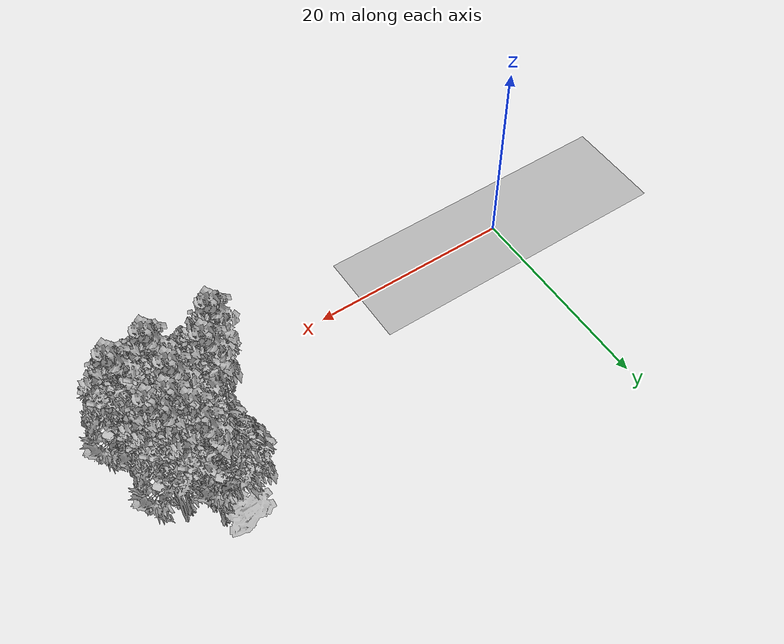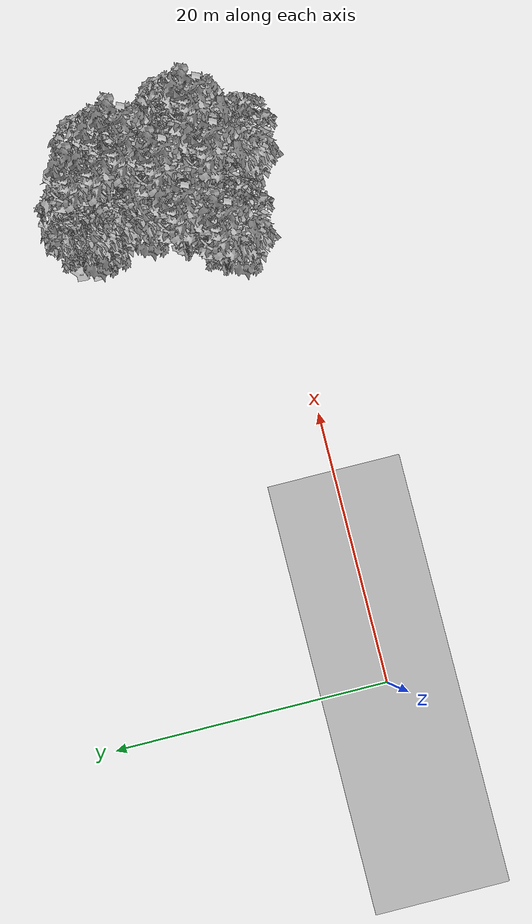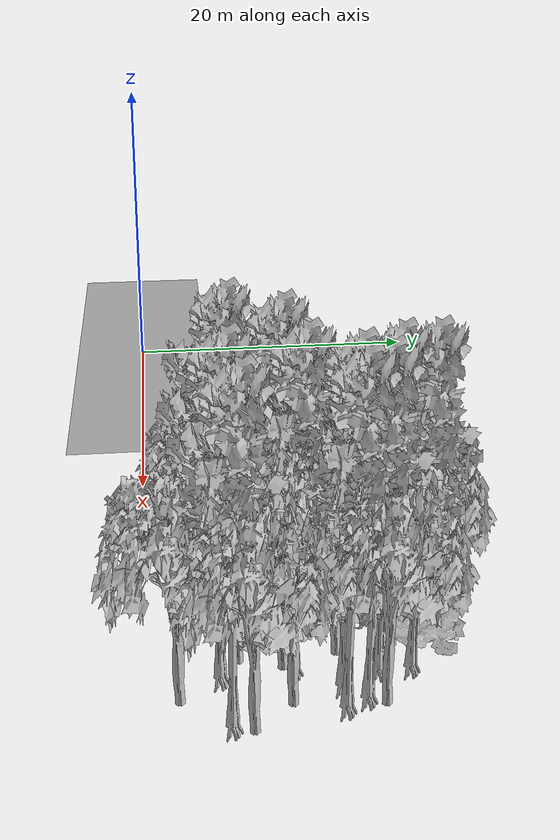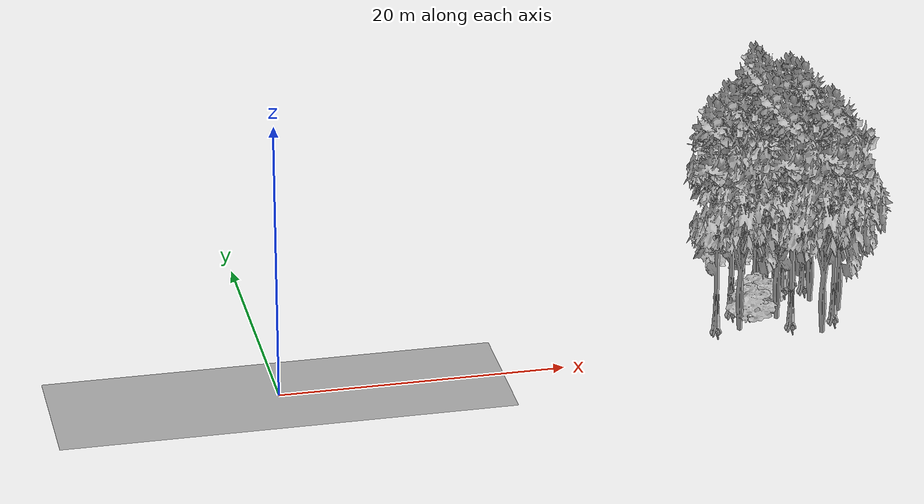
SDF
<sdf version="1.7">
 <world name="default">
  <model name="ground_plane">
   <static>1</static>
   <link name="link">
    <collision name="collision">
     <pose>-50 0 0 0 -0 0</pose>
     <geometry><plane><normal>0 0 1</normal><size>100 100</size></plane></geometry>
     <surface><contact><ode><min_depth>0.01</min_depth><max_vel>0</max_vel></ode></contact></surface>
    </collision>
    <visual name="grass">
     <cast_shadows>0</cast_shadows>
     <geometry>
      <mesh>
       <scale>0.5814285714285714 0.18142857142857144 0.1</scale>
       <uri>file://grass_plane/meshes/grass_plane.dae</uri>
      </mesh>
     </geometry>
    </visual>
   </link>
  </model>
  <model name="Tree 3">
   <static>1</static>
   <pose>37.284012888872894 12.578448107484277 0 1.57079 -0 0</pose>
   <link name="link">
    <collision name="collision">
     <geometry><mesh><scale>3.5 5 3.5</scale><uri>model://tree_9/meshes/tree_9.obj</uri></mesh></geometry>
    </collision>
    <visual name="visual">
     <geometry><mesh><scale>3.5 5 3.5</scale><uri>model://tree_9/meshes/tree_9.obj</uri></mesh></geometry>
    </visual>
   </link>
  </model>
  <model name="Tree 19">
   <static>1</static>
   <pose>41.006656613931085 4.813287169033867 0 1.57079 -0 0</pose>
   <link name="link">
    <collision name="collision">
     <geometry><mesh><scale>3.5 5 3.5</scale><uri>model://tree_2/meshes/tree_2.obj</uri></mesh></geometry>
    </collision>
    <visual name="visual">
     <geometry><mesh><scale>3.5 5 3.5</scale><uri>model://tree_2/meshes/tree_2.obj</uri></mesh></geometry>
    </visual>
   </link>
  </model>
  <model name="Tree 26">
   <static>1</static>
   <pose>37.36971718288308 11.007175692957809 0 1.57079 -0 0</pose>
   <link name="link">
    <collision name="collision">
     <geometry><mesh><scale>3.5 5 3.5</scale><uri>model://tree_9/meshes/tree_9.obj</uri></mesh></geometry>
    </collision>
    <visual name="visual">
     <geometry><mesh><scale>3.5 5 3.5</scale><uri>model://tree_9/meshes/tree_9.obj</uri></mesh></geometry>
    </visual>
   </link>
  </model>
  <model name="Tree 44">
   <static>1</static>
   <pose>35.48475294247655 13.259854168835275 0 1.57079 -0 0</pose>
   <link name="link">
    <collision name="collision">
     <geometry><mesh><scale>3 2 3</scale><uri>model://tree_3/meshes/tree_3.obj</uri></mesh></geometry>
    </collision>
    <visual name="visual">
     <geometry><mesh><scale>3 2 3</scale><uri>model://tree_3/meshes/tree_3.obj</uri></mesh></geometry>
    </visual>
   </link>
  </model>
  <model name="Tree 66">
   <static>1</static>
   <pose>36.98524182467192 6.487111636802393 0 1.57079 -0 0</pose>
   <link name="link">
    <collision name="collision">
     <geometry><mesh><scale>3.5 5 3.5</scale><uri>model://tree_2/meshes/tree_2.obj</uri></mesh></geometry>
    </collision>
    <visual name="visual">
     <geometry><mesh><scale>3.5 5 3.5</scale><uri>model://tree_2/meshes/tree_2.obj</uri></mesh></geometry>
    </visual>
   </link>
  </model>
  <model name="Tree 73">
   <static>1</static>
   <pose>34.409120478889335 4.654451012780797 0 1.57079 -0 0</pose>
   <link name="link">
    <collision name="collision">
     <geometry><mesh><scale>4 2.5 4</scale><uri>model://tree_1/meshes/tree_1.obj</uri></mesh></geometry>
    </collision>
    <visual name="visual">
     <geometry><mesh><scale>4 2.5 4</scale><uri>model://tree_1/meshes/tree_1.obj</uri></mesh></geometry>
    </visual>
   </link>
  </model>
  <model name="Tree 83">
   <static>1</static>
   <pose>39.79448609846095 10.877477808570585 0 1.57079 -0 0</pose>
   <link name="link">
    <collision name="collision">
     <geometry><mesh><scale>3.5 5 3.5</scale><uri>model://tree_2/meshes/tree_2.obj</uri></mesh></geometry>
    </collision>
    <visual name="visual">
     <geometry><mesh><scale>3.5 5 3.5</scale><uri>model://tree_2/meshes/tree_2.obj</uri></mesh></geometry>
    </visual>
   </link>
  </model>
  <model name="Tree 116">
   <static>1</static>
   <pose>36.17720808929131 9.118183829779575 0 1.57079 -0 0</pose>
   <link name="link">
    <collision name="collision">
     <geometry><mesh><scale>3.5 5 3.5</scale><uri>model://tree_2/meshes/tree_2.obj</uri></mesh></geometry>
    </collision>
    <visual name="visual">
     <geometry><mesh><scale>3.5 5 3.5</scale><uri>model://tree_2/meshes/tree_2.obj</uri></mesh></geometry>
    </visual>
   </link>
  </model>
  <model name="Tree 157">
   <static>1</static>
   <pose>40.46143060145509 3.920253921624095 0 1.57079 -0 0</pose>
   <link name="link">
    <collision name="collision">
     <geometry><mesh><scale>3.5 5 3.5</scale><uri>model://tree_9/meshes/tree_9.obj</uri></mesh></geometry>
    </collision>
    <visual name="visual">
     <geometry><mesh><scale>3.5 5 3.5</scale><uri>model://tree_9/meshes/tree_9.obj</uri></mesh></geometry>
    </visual>
   </link>
  </model>
  <model name="Tree 159">
   <static>1</static>
   <pose>33.34363083927957 3.214086588557553 0 1.57079 -0 0</pose>
   <link name="link">
    <collision name="collision">
     <geometry><mesh><scale>3.5 5 3.5</scale><uri>model://tree_2/meshes/tree_2.obj</uri></mesh></geometry>
    </collision>
    <visual name="visual">
     <geometry><mesh><scale>3.5 5 3.5</scale><uri>model://tree_2/meshes/tree_2.obj</uri></mesh></geometry>
    </visual>
   </link>
  </model>
  <model name="Tree 265">
   <static>1</static>
   <pose>35.63449309148308 12.834666037784782 0 1.57079 -0 0</pose>
   <link name="link">
    <collision name="collision">
     <geometry><mesh><scale>3.5 5 3.5</scale><uri>model://tree_2/meshes/tree_2.obj</uri></mesh></geometry>
    </collision>
    <visual name="visual">
     <geometry><mesh><scale>3.5 5 3.5</scale><uri>model://tree_2/meshes/tree_2.obj</uri></mesh></geometry>
    </visual>
   </link>
  </model>
  <model name="Tree 285">
   <static>1</static>
   <pose>31.8998690218541 3.918400917252768 0 1.57079 -0 0</pose>
   <link name="link">
    <collision name="collision">
     <geometry><mesh><scale>3.5 5 3.5</scale><uri>model://tree_9/meshes/tree_9.obj</uri></mesh></geometry>
    </collision>
    <visual name="visual">
     <geometry><mesh><scale>3.5 5 3.5</scale><uri>model://tree_9/meshes/tree_9.obj</uri></mesh></geometry>
    </visual>
   </link>
  </model>
  <model name="Tree 299">
   <static>1</static>
   <pose>38.23902592365884 9.155904368468594 0 1.57079 -0 0</pose>
   <link name="link">
    <collision name="collision">
     <geometry><mesh><scale>3.5 5 3.5</scale><uri>model://tree_9/meshes/tree_9.obj</uri></mesh></geometry>
    </collision>
    <visual name="visual">
     <geometry><mesh><scale>3.5 5 3.5</scale><uri>model://tree_9/meshes/tree_9.obj</uri></mesh></geometry>
    </visual>
   </link>
  </model>
  <model name="Tree 333">
   <static>1</static>
   <pose>33.63933330437368 6.358702304200413 0 1.57079 -0 0</pose>
   <link name="link">
    <collision name="collision">
     <geometry><mesh><scale>3.5 5 3.5</scale><uri>model://tree_9/meshes/tree_9.obj</uri></mesh></geometry>
    </collision>
    <visual name="visual">
     <geometry><mesh><scale>3.5 5 3.5</scale><uri>model://tree_9/meshes/tree_9.obj</uri></mesh></geometry>
    </visual>
   </link>
  </model>
  <model name="Tree 360">
   <static>1</static>
   <pose>37.260618930965435 3.5703694426320247 0 1.57079 -0 0</pose>
   <link name="link">
    <collision name="collision">
     <geometry><mesh><scale>3.5 5 3.5</scale><uri>model://tree_9/meshes/tree_9.obj</uri></mesh></geometry>
    </collision>
    <visual name="visual">
     <geometry><mesh><scale>3.5 5 3.5</scale><uri>model://tree_9/meshes/tree_9.obj</uri></mesh></geometry>
    </visual>
   </link>
  </model>
  <model name="Tree 420">
   <static>1</static>
   <pose>37.01779669639268 7.042474001088749 0 1.57079 -0 0</pose>
   <link name="link">
    <collision name="collision">
     <geometry><mesh><scale>3.5 5 3.5</scale><uri>model://tree_9/meshes/tree_9.obj</uri></mesh></geometry>
    </collision>
    <visual name="visual">
     <geometry><mesh><scale>3.5 5 3.5</scale><uri>model://tree_9/meshes/tree_9.obj</uri></mesh></geometry>
    </visual>
   </link>
  </model>
  <model name="Tree 422">
   <static>1</static>
   <pose>38.91439200114614 1.6243354978055997 0 1.57079 -0 0</pose>
   <link name="link">
    <collision name="collision">
     <geometry><mesh><scale>3.5 5 3.5</scale><uri>model://tree_2/meshes/tree_2.obj</uri></mesh></geometry>
    </collision>
    <visual name="visual">
     <geometry><mesh><scale>3.5 5 3.5</scale><uri>model://tree_2/meshes/tree_2.obj</uri></mesh></geometry>
    </visual>
   </link>
  </model>
  <model name="Tree 425">
   <static>1</static>
   <pose>39.71095950181652 9.123449825247583 0 1.57079 -0 0</pose>
   <link name="link">
    <collision name="collision">
     <geometry><mesh><scale>3.5 5 3.5</scale><uri>model://tree_9/meshes/tree_9.obj</uri></mesh></geometry>
    </collision>
    <visual name="visual">
     <geometry><mesh><scale>3.5 5 3.5</scale><uri>model://tree_9/meshes/tree_9.obj</uri></mesh></geometry>
    </visual>
   </link>
  </model>
  <model name="Tree 432">
   <static>1</static>
   <pose>39.45047745451703 6.6881511633941315 0 1.57079 -0 0</pose>
   <link name="link">
    <collision name="collision">
     <geometry><mesh><scale>3.5 5 3.5</scale><uri>model://tree_2/meshes/tree_2.obj</uri></mesh></geometry>
    </collision>
    <visual name="visual">
     <geometry><mesh><scale>3.5 5 3.5</scale><uri>model://tree_2/meshes/tree_2.obj</uri></mesh></geometry>
    </visual>
   </link>
  </model>
  <model name="Tree 469">
   <static>1</static>
   <pose>35.90418991480527 11.877585332985628 0 1.57079 -0 0</pose>
   <link name="link">
    <collision name="collision">
     <geometry><mesh><scale>3.5 5 3.5</scale><uri>model://tree_2/meshes/tree_2.obj</uri></mesh></geometry>
    </collision>
    <visual name="visual">
     <geometry><mesh><scale>3.5 5 3.5</scale><uri>model://tree_2/meshes/tree_2.obj</uri></mesh></geometry>
    </visual>
   </link>
  </model>
  <model name="Tree 493">
   <static>1</static>
   <pose>35.421972247777944 6.264163505696882 0 1.57079 -0 0</pose>
   <link name="link">
    <collision name="collision">
     <geometry><mesh><scale>4 2.5 4</scale><uri>model://tree_1/meshes/tree_1.obj</uri></mesh></geometry>
    </collision>
    <visual name="visual">
     <geometry><mesh><scale>4 2.5 4</scale><uri>model://tree_1/meshes/tree_1.obj</uri></mesh></geometry>
    </visual>
   </link>
  </model>
  <model name="Tree 498">
   <static>1</static>
   <pose>36.38232979438489 4.449493553715698 0 1.57079 -0 0</pose>
   <link name="link">
    <collision name="collision">
     <geometry><mesh><scale>3.5 5 3.5</scale><uri>model://tree_2/meshes/tree_2.obj</uri></mesh></geometry>
    </collision>
    <visual name="visual">
     <geometry><mesh><scale>3.5 5 3.5</scale><uri>model://tree_2/meshes/tree_2.obj</uri></mesh></geometry>
    </visual>
   </link>
  </model>
  <model name="Tree 538">
   <static>1</static>
   <pose>39.18255726315914 10.173414708909881 0 1.57079 -0 0</pose>
   <link name="link">
    <collision name="collision">
     <geometry><mesh><scale>3.5 5 3.5</scale><uri>model://tree_9/meshes/tree_9.obj</uri></mesh></geometry>
    </collision>
    <visual name="visual">
     <geometry><mesh><scale>3.5 5 3.5</scale><uri>model://tree_9/meshes/tree_9.obj</uri></mesh></geometry>
    </visual>
   </link>
  </model>
 </world>
</sdf>
